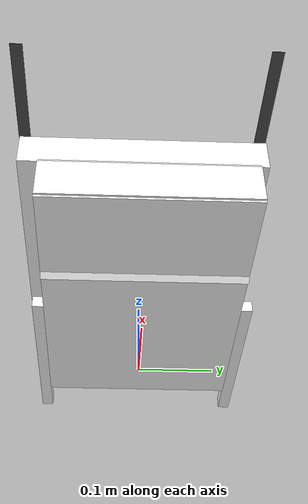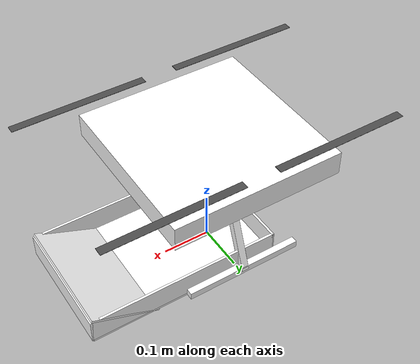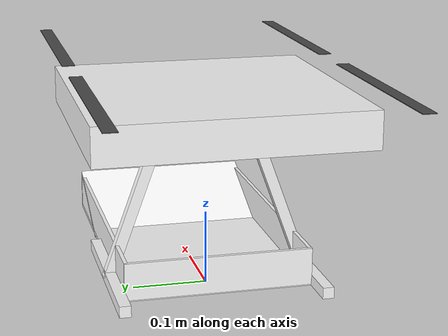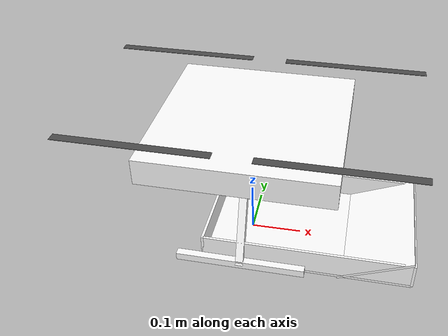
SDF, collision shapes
<?xml version="1.0" encoding="UTF-8"?>
<sdf version='1.9'>
  <model name='x500'>
    <include merge='true'>
      <uri>model://x500_base</uri>
    </include>
    <plugin filename="gz-sim-multicopter-motor-model-system" name="gz::sim::systems::MulticopterMotorModel">
      <jointName>rotor_0_joint</jointName>
      <linkName>rotor_0</linkName>
      <turningDirection>ccw</turningDirection>
      <timeConstantUp>0.0125</timeConstantUp>
      <timeConstantDown>0.025</timeConstantDown>
      <maxRotVelocity>1000.0</maxRotVelocity>
      <motorConstant>8.54858e-06</motorConstant>
      <momentConstant>0.016</momentConstant>
      <commandSubTopic>command/motor_speed</commandSubTopic>
      <motorNumber>0</motorNumber>
      <rotorDragCoefficient>8.06428e-05</rotorDragCoefficient>
      <rollingMomentCoefficient>1e-06</rollingMomentCoefficient>
      <rotorVelocitySlowdownSim>10</rotorVelocitySlowdownSim>
      <motorType>velocity</motorType>
    </plugin>
    <plugin filename="gz-sim-multicopter-motor-model-system" name="gz::sim::systems::MulticopterMotorModel">
      <jointName>rotor_1_joint</jointName>
      <linkName>rotor_1</linkName>
      <turningDirection>ccw</turningDirection>
      <timeConstantUp>0.0125</timeConstantUp>
      <timeConstantDown>0.025</timeConstantDown>
      <maxRotVelocity>1000.0</maxRotVelocity>
      <motorConstant>8.54858e-06</motorConstant>
      <momentConstant>0.016</momentConstant>
      <commandSubTopic>command/motor_speed</commandSubTopic>
      <motorNumber>1</motorNumber>
      <rotorDragCoefficient>8.06428e-05</rotorDragCoefficient>
      <rollingMomentCoefficient>1e-06</rollingMomentCoefficient>
      <rotorVelocitySlowdownSim>10</rotorVelocitySlowdownSim>
      <motorType>velocity</motorType>
    </plugin>
    <plugin filename="gz-sim-multicopter-motor-model-system" name="gz::sim::systems::MulticopterMotorModel">
      <jointName>rotor_2_joint</jointName>
      <linkName>rotor_2</linkName>
      <turningDirection>cw</turningDirection>
      <timeConstantUp>0.0125</timeConstantUp>
      <timeConstantDown>0.025</timeConstantDown>
      <maxRotVelocity>1000.0</maxRotVelocity>
      <motorConstant>8.54858e-06</motorConstant>
      <momentConstant>0.016</momentConstant>
      <commandSubTopic>command/motor_speed</commandSubTopic>
      <motorNumber>2</motorNumber>
      <rotorDragCoefficient>8.06428e-05</rotorDragCoefficient>
      <rollingMomentCoefficient>1e-06</rollingMomentCoefficient>
      <rotorVelocitySlowdownSim>10</rotorVelocitySlowdownSim>
      <motorType>velocity</motorType>
    </plugin>
    <plugin filename="gz-sim-multicopter-motor-model-system" name="gz::sim::systems::MulticopterMotorModel">
      <jointName>rotor_3_joint</jointName>
      <linkName>rotor_3</linkName>
      <turningDirection>cw</turningDirection>
      <timeConstantUp>0.0125</timeConstantUp>
      <timeConstantDown>0.025</timeConstantDown>
      <maxRotVelocity>1000.0</maxRotVelocity>
      <motorConstant>8.54858e-06</motorConstant>
      <momentConstant>0.016</momentConstant>
      <commandSubTopic>command/motor_speed</commandSubTopic>
      <motorNumber>3</motorNumber>
      <rotorDragCoefficient>8.06428e-05</rotorDragCoefficient>
      <rollingMomentCoefficient>1e-06</rollingMomentCoefficient>
      <rotorVelocitySlowdownSim>10</rotorVelocitySlowdownSim>
      <motorType>velocity</motorType>
    </plugin>
    <plugin filename="gz-sim-pose-publisher-system" name="gz::sim::systems::PosePublisher">
        <publish_nested_model_pose>true</publish_nested_model_pose>
        <publish_link_pose>false</publish_link_pose>
        <publish_collision_pose>true</publish_collision_pose>
        <publish_visual_pose>true</publish_visual_pose>
      </plugin>
  </model>
</sdf>

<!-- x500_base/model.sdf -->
<sdf version='1.9'>
  <model name='x500_base'>
    <pose>0 0 .24 0 0 0</pose>
    <self_collide>false</self_collide>
    <static>false</static>
    <link name="base_link">
      <inertial>
        <mass>2.0</mass>
        <inertia>
          <ixx>0.02166666666666667</ixx>
          <ixy>0</ixy>
          <ixz>0</ixz>
          <iyy>0.02166666666666667</iyy>
          <iyz>0</iyz>
          <izz>0.04000000000000001</izz>
        </inertia>
      </inertial>
      <gravity>true</gravity>
      <velocity_decay/>
      <visual name="base_link_visual">
        <pose>0 0 .025 0 0 3.141592654</pose>
        <geometry>
          <mesh>
            <scale>1 1 1</scale>
            <uri>model://x500_base/meshes/NXP-HGD-CF.dae</uri>
          </mesh>
        </geometry>
      </visual>
      <visual name="5010_motor_base_0">
        <pose>0.174 0.174 .032 0 0 -.45</pose>
        <geometry>
          <mesh>
            <scale>1 1 1</scale>
            <uri>model://x500_base/meshes/5010Base.dae</uri>
          </mesh>
        </geometry>
      </visual>
      <visual name="5010_motor_base_1">
        <pose>-0.174 0.174 .032 0 0 -.45</pose>
        <geometry>
          <mesh>
            <scale>1 1 1</scale>
            <uri>model://x500_base/meshes/5010Base.dae</uri>
          </mesh>
        </geometry>
      </visual>
      <visual name="5010_motor_base_2">
        <pose>0.174 -0.174 .032 0 0 -.45</pose>
        <geometry>
          <mesh>
            <scale>1 1 1</scale>
            <uri>model://x500_base/meshes/5010Base.dae</uri>
          </mesh>
        </geometry>
      </visual>
      <visual name="5010_motor_base_3">
        <pose>-0.174 -0.174 .032 0 0 -.45</pose>
        <geometry>
          <mesh>
            <scale>1 1 1</scale>
            <uri>model://x500_base/meshes/5010Base.dae</uri>
          </mesh>
        </geometry>
      </visual>
      <visual name="NXP_FMUK66_FRONT">
        <pose>0.047 .001 .043 1 0 1.57</pose>
        <cast_shadows>false</cast_shadows>
        <geometry>
          <plane>
            <normal>0 0 1</normal>
            <size>.013 .007</size>
          </plane>
        </geometry>
        <material>
          <diffuse>1.0 1.0 1.0</diffuse>
          <specular>1.0 1.0 1.0</specular>
          <pbr>
            <metal>
              <albedo_map>model://x500_base/materials/textures/nxp.png</albedo_map>
            </metal>
          </pbr>
        </material>
      </visual>
      <visual name="NXP_FMUK66_TOP">
        <pose>-0.023 0 .0515 0 0 -1.57</pose>
        <cast_shadows>false</cast_shadows>
        <geometry>
          <plane>
            <normal>0 0 1</normal>
            <size>.013 .007</size>
          </plane>
        </geometry>
        <material>
          <diffuse>1.0 1.0 1.0</diffuse>
          <specular>1.0 1.0 1.0</specular>
          <pbr>
            <metal>
              <albedo_map>model://x500_base/materials/textures/nxp.png</albedo_map>
            </metal>
          </pbr>
        </material>
      </visual>
      <visual name="RDDRONE_FMUK66_TOP">
        <pose>-.03 0 .0515 0 0 -1.57</pose>
        <cast_shadows>false</cast_shadows>
        <geometry>
          <plane>
            <normal>0 0 1</normal>
            <size>.032 .0034</size>
          </plane>
        </geometry>
        <material>
          <diffuse>1.0 1.0 1.0</diffuse>
          <specular>1.0 1.0 1.0</specular>
          <pbr>
            <metal>
              <albedo_map>model://x500_base/materials/textures/rd.png</albedo_map>
            </metal>
          </pbr>
        </material>
      </visual>
      <collision name="base_link_collision_0">
        <pose>0 0 .007 0 0 0</pose>
        <geometry>
          <box>
            <size>0.35355339059327373 0.35355339059327373 0.05</size>
          </box>
        </geometry>
        <surface>
          <contact>
            <ode>
              <min_depth>0.001</min_depth>
              <max_vel>0</max_vel>
            </ode>
          </contact>
          <friction>
            <ode/>
          </friction>
        </surface>
      </collision>
      <collision name="base_link_collision_1">
        <pose>0 -0.098 -.123 -0.35 0 0</pose>
        <geometry>
          <box>
            <size>0.015 0.015 0.21</size>
          </box>
        </geometry>
        <surface>
          <contact>
            <ode>
              <min_depth>0.001</min_depth>
              <max_vel>0</max_vel>
            </ode>
          </contact>
          <friction>
            <ode/>
          </friction>
        </surface>
      </collision>
      <collision name="base_link_collision_2">
        <pose>0 0.098 -.123 0.35 0 0</pose>
        <geometry>
          <box>
            <size>0.015 0.015 0.21</size>
          </box>
        </geometry>
        <surface>
          <contact>
            <ode>
              <min_depth>0.001</min_depth>
              <max_vel>0</max_vel>
            </ode>
          </contact>
          <friction>
            <ode/>
          </friction>
        </surface>
      </collision>
      <collision name="base_link_collision_3">
        <pose>0 -0.132 -.2195 0 0 0</pose>
        <geometry>
          <box>
            <size>0.25 0.015 0.015</size>
          </box>
        </geometry>
        <surface>
          <contact>
            <ode>
              <min_depth>0.001</min_depth>
              <max_vel>0</max_vel>
            </ode>
          </contact>
          <friction>
            <ode/>
          </friction>
        </surface>
      </collision>
      <collision name="base_link_collision_4">
        <pose>0 0.132 -.2195 0 0 0</pose>
        <geometry>
          <box>
            <size>0.25 0.015 0.015</size>
          </box>
        </geometry>
        <surface>
          <contact>
            <ode>
              <min_depth>0.001</min_depth>
              <max_vel>0</max_vel>
            </ode>
          </contact>
          <friction>
            <ode/>
          </friction>
        </surface>
      </collision>
      <sensor name="air_pressure_sensor" type="air_pressure">
        <always_on>1</always_on>
        <update_rate>50</update_rate>
        <air_pressure>
          <!-- Noise modeled after BMP390 -->
          <pressure>
            <noise type="gaussian">
              <mean>0</mean>
              <stddev>3</stddev>
            </noise>
          </pressure>
        </air_pressure>
      </sensor>
      <sensor name="magnetometer_sensor" type="magnetometer">
        <always_on>1</always_on>
        <update_rate>100</update_rate>
        <magnetometer>
          <!-- TODO: update to fix units and coordinate system when we move past Harmonic -->
          <!-- See https://github.com/gazebosim/gz-sim/pull/2460 -->
          <!-- 3mgauss RMS: NOTE: noise is in tesla but sensor reports data in gauss -->
          <!-- Noise modeled after IIS2MDC -->
          <x>
            <noise type="gaussian">
              <stddev>0.0001</stddev>
            </noise>
          </x>
          <y>
            <noise type="gaussian">
              <stddev>0.0001</stddev>
            </noise>
          </y>
          <z>
            <noise type="gaussian">
              <stddev>0.0001</stddev>
            </noise>
          </z>
        </magnetometer>
      </sensor>
      <sensor name="imu_sensor" type="imu">
        <always_on>1</always_on>
        <update_rate>250</update_rate>
        <imu>
          <angular_velocity>
            <!-- Noise modeled after IIM42653 -->
            <!-- 0.05 deg/s converted to rad/s -->
            <x>
              <noise type="gaussian">
                <mean>0.0</mean>
                <stddev>0.0008726646</stddev>
              </noise>
            </x>
            <y>
              <noise type="gaussian">
                <mean>0.0</mean>
                <stddev>0.0008726646</stddev>
              </noise>
            </y>
            <z>
              <noise type="gaussian">
                <mean>0.0</mean>
                <stddev>0.0008726646</stddev>
              </noise>
            </z>
          </angular_velocity>
          <linear_acceleration>
            <!-- Noise modeled after IIM42653 -->
            <!-- X & Y axis: 0.65 mg-rms converted to m/ss -->
            <x>
              <noise type="gaussian">
                <mean>0.0</mean>
                <stddev>0.00637</stddev>
              </noise>
            </x>
            <y>
              <noise type="gaussian">
                <mean>0.0</mean>
                <stddev>0.00637</stddev>
              </noise>
            </y>
            <!-- Z axis: 0.70 mg-rms converted to m/ss-->
            <z>
              <noise type="gaussian">
                <mean>0.0</mean>
                <stddev>0.00686</stddev>
              </noise>
            </z>
          </linear_acceleration>
        </imu>
      </sensor>
      <sensor name="navsat_sensor" type="navsat">
        <always_on>1</always_on>
        <update_rate>30</update_rate>
      </sensor>
    </link>
    <link name="rotor_0">
      <gravity>true</gravity>
      <self_collide>false</self_collide>
      <velocity_decay/>
      <pose>0.174 -0.174 0.06 0 0 0</pose>
      <inertial>
          <mass>0.016076923076923075</mass>
          <inertia>
            <ixx>3.8464910483993325e-07</ixx>
            <iyy>2.6115851691700804e-05</iyy>
            <izz>2.649858234714004e-05</izz>
          </inertia>
        </inertial>
      <visual name="rotor_0_visual">
        <pose>-0.022 -0.14638461538461536 -0.016 0 0 0</pose>
        <geometry>
          <mesh>
            <scale>0.8461538461538461 0.8461538461538461 0.8461538461538461</scale>
            <uri>model://x500_base/meshes/1345_prop_ccw.stl</uri>
          </mesh>
        </geometry>
        <material>
          <script>
            <name>Gazebo/DarkGrey</name>
            <uri>file://media/materials/scripts/gazebo.material</uri>
          </script>
        </material>
      </visual>
      <visual name="rotor_0_visual_motor_bell">
        <pose>0 0 -.032 0 0 0</pose>
        <geometry>
          <mesh>
            <scale>1 1 1</scale>
            <uri>model://x500_base/meshes/5010Bell.dae</uri>
          </mesh>
        </geometry>
      </visual>
      <collision name="rotor_0_collision">
        <pose>0 0 0 0 0 0 </pose>
        <geometry>
          <box>
            <size>0.2792307692307692 0.016923076923076923 0.0008461538461538462</size>
          </box>
        </geometry>
        <surface>
          <contact>
            <ode>
              <min_depth>0.001</min_depth>
              <max_vel>0</max_vel>
            </ode>
          </contact>
          <friction>
            <ode/>
          </friction>
        </surface>
      </collision>
    </link>
    <joint name="rotor_0_joint" type="revolute">
      <parent>base_link</parent>
      <child>rotor_0</child>
      <axis>
        <xyz>0 0 1</xyz>
        <limit>
          <lower>-1e+16</lower>
          <upper>1e+16</upper>
        </limit>
        <dynamics>
          <spring_reference>0</spring_reference>
          <spring_stiffness>0</spring_stiffness>
        </dynamics>
      </axis>
    </joint>
    <link name="rotor_1">
      <gravity>true</gravity>
      <self_collide>false</self_collide>
      <velocity_decay/>
      <pose>-0.174 0.174 0.06 0 0 0</pose>
      <inertial>
          <mass>0.016076923076923075</mass>
          <inertia>
            <ixx>3.8464910483993325e-07</ixx>
            <iyy>2.6115851691700804e-05</iyy>
            <izz>2.649858234714004e-05</izz>
          </inertia>
        </inertial>
      <visual name="rotor_1_visual">
        <pose>-0.022 -0.14638461538461536 -0.016 0 0 0</pose>
        <geometry>
          <mesh>
            <scale>0.8461538461538461 0.8461538461538461 0.8461538461538461</scale>
            <uri>model://x500_base/meshes/1345_prop_ccw.stl</uri>
          </mesh>
        </geometry>
        <material>
          <script>
            <name>Gazebo/DarkGrey</name>
            <uri>file://media/materials/scripts/gazebo.material</uri>
          </script>
        </material>
      </visual>
      <visual name="rotor_1_visual_motor_top">
        <pose>0 0 -.032 0 0 0</pose>
        <geometry>
          <mesh>
            <scale>1 1 1</scale>
            <uri>model://x500_base/meshes/5010Bell.dae</uri>
          </mesh>
        </geometry>
      </visual>
      <collision name="rotor_1_collision">
        <pose>0 0 0 0 0 0 </pose>
        <geometry>
          <box>
            <size>0.2792307692307692 0.016923076923076923 0.0008461538461538462</size>
          </box>
        </geometry>
        <surface>
          <contact>
            <ode>
              <min_depth>0.001</min_depth>
              <max_vel>0</max_vel>
            </ode>
          </contact>
          <friction>
            <ode/>
          </friction>
        </surface>
      </collision>
    </link>
    <joint name="rotor_1_joint" type="revolute">
      <parent>base_link</parent>
      <child>rotor_1</child>
      <axis>
        <xyz>0 0 1</xyz>
        <limit>
          <lower>-1e+16</lower>
          <upper>1e+16</upper>
        </limit>
        <dynamics>
          <spring_reference>0</spring_reference>
          <spring_stiffness>0</spring_stiffness>
        </dynamics>
      </axis>
    </joint>
    <link name="rotor_2">
      <gravity>true</gravity>
      <self_collide>false</self_collide>
      <velocity_decay/>
      <pose>0.174 0.174 0.06 0 0 0</pose>
      <inertial>
          <mass>0.016076923076923075</mass>
          <inertia>
            <ixx>3.8464910483993325e-07</ixx>
            <iyy>2.6115851691700804e-05</iyy>
            <izz>2.649858234714004e-05</izz>
          </inertia>
        </inertial>
      <visual name="rotor_2_visual">
        <pose>-0.022 -0.14638461538461536 -0.016 0 0 0</pose>
        <geometry>
          <mesh>
            <scale>0.8461538461538461 0.8461538461538461 0.8461538461538461</scale>
            <uri>model://x500_base/meshes/1345_prop_cw.stl</uri>
          </mesh>
        </geometry>
        <material>
          <script>
            <name>Gazebo/DarkGrey</name>
            <uri>file://media/materials/scripts/gazebo.material</uri>
          </script>
        </material>
      </visual>
      <visual name="rotor_2_visual_motor_top">
        <pose>0 0 -.032 0 0 0</pose>
        <geometry>
          <mesh>
            <scale>1 1 1</scale>
            <uri>model://x500_base/meshes/5010Bell.dae</uri>
          </mesh>
        </geometry>
      </visual>
      <collision name="rotor_2_collision">
        <pose>0 0 0 0 0 0 </pose>
        <geometry>
          <box>
            <size>0.2792307692307692 0.016923076923076923 0.0008461538461538462</size>
          </box>
        </geometry>
        <surface>
          <contact>
            <ode>
              <min_depth>0.001</min_depth>
              <max_vel>0</max_vel>
            </ode>
          </contact>
          <friction>
            <ode/>
          </friction>
        </surface>
      </collision>
    </link>
    <joint name="rotor_2_joint" type="revolute">
      <parent>base_link</parent>
      <child>rotor_2</child>
      <axis>
        <xyz>0 0 1</xyz>
        <limit>
          <lower>-1e+16</lower>
          <upper>1e+16</upper>
        </limit>
        <dynamics>
          <spring_reference>0</spring_reference>
          <spring_stiffness>0</spring_stiffness>
        </dynamics>
      </axis>
    </joint>
<link name="rotor_3">
      <gravity>true</gravity>
      <self_collide>false</self_collide>
      <velocity_decay/>
      <pose>-0.174 -0.174 0.06 0 0 0</pose>
      <inertial>
          <mass>0.016076923076923075</mass>
          <inertia>
            <ixx>3.8464910483993325e-07</ixx>
            <iyy>2.6115851691700804e-05</iyy>
            <izz>2.649858234714004e-05</izz>
          </inertia>
        </inertial>
      <visual name="rotor_3_visual">
        <pose>-0.022 -0.14638461538461536 -0.016 0 0 0</pose>
        <geometry>
          <mesh>
            <scale>0.8461538461538461 0.8461538461538461 0.8461538461538461</scale>
            <uri>model://x500_base/meshes/1345_prop_cw.stl</uri>
          </mesh>
        </geometry>
        <material>
          <script>
            <name>Gazebo/DarkGrey</name>
            <uri>file://media/materials/scripts/gazebo.material</uri>
          </script>
        </material>
      </visual>
      <visual name="rotor_3_visual_motor_top">
        <pose>0 0 -.032 0 0 0</pose>
        <geometry>
          <mesh>
            <scale>1 1 1</scale>
            <uri>model://x500_base/meshes/5010Bell.dae</uri>
          </mesh>
        </geometry>
      </visual>
      <collision name="rotor_3_collision">
        <pose>0 0 0 0 0 0 </pose>
        <geometry>
          <box>
            <size>0.2792307692307692 0.016923076923076923 0.0008461538461538462</size>
          </box>
        </geometry>
        <surface>
          <contact>
            <ode>
              <min_depth>0.001</min_depth>
              <max_vel>0</max_vel>
            </ode>
          </contact>
          <friction>
            <ode/>
          </friction>
        </surface>
      </collision>
    </link>

    <joint name="rotor_3_joint" type="revolute">
      <parent>base_link</parent>
      <child>rotor_3</child>
      <axis>
        <xyz>0 0 1</xyz>
        <limit>
          <lower>-1e+16</lower>
          <upper>1e+16</upper>
        </limit>
        <dynamics>
          <spring_reference>0</spring_reference>
          <spring_stiffness>0</spring_stiffness>
        </dynamics>
      </axis>
    </joint>

   <link name="landing_gear_plate">
      <pose>0.125 0 -0.225 0 0 0</pose>
      <inertial>
        <mass>0.2</mass> <inertia>
          <ixx>0.0002</ixx> <ixy>0</ixy> <ixz>0</ixz>
          <iyy>0.0002</iyy> <iyz>0</iyz>
          <izz>0.0002</izz>
        </inertia>
      </inertial>

      <visual name="bottom_visual">
        <geometry>
          <box><size>0.4 0.25 0.005</size></box>
        </geometry>
        <material><diffuse>1 1 1 1</diffuse></material>
      </visual>
      <collision name="bottom_collision">
 	 <geometry>
  	  <box><size>0.4 0.25 0.005</size></box>
  	</geometry>
 	 <surface>
  	  <friction>
    	  <ode>
    	    <mu>1.0</mu>  <mu2>1.0</mu2> <fdir1>0 0 0</fdir1> </ode>
    	</friction>
   	 <contact>
  	    <ode>
   	     <min_depth>0.001</min_depth> </ode>
  	 </contact>
 	 </surface>
	</collision>

      <visual name="scivolo_visual">
      <pose>0.13 0 0.025 0 -0.4 0</pose>
        <geometry>
          <box><size>0.15 0.25 0.005</size></box>
        </geometry>
        <material><diffuse>1 1 1 1</diffuse></material>
      </visual>
      <collision name="scivolo_collision">
  	<pose>0.13 0 0.025 0 -0.4 0</pose>
 	 <geometry>
  	  <box><size>0.15 0.25 0.005</size></box>
  	</geometry>
 	 <surface>
  	  <friction>
    	  <ode>
    	    <mu>1.0</mu>  <mu2>1.0</mu2> <fdir1>0 0 0</fdir1> </ode>
    	</friction>
   	 <contact>
  	    <ode>
   	     <min_depth>0.001</min_depth> </ode>
  	 </contact>
 	 </surface>
	</collision>

      <visual name="wall_left_visual">
        <pose>0 0.125 0.025 0 0 0</pose>
        <geometry>
          <box><size>0.4 0.005 0.05</size></box>
        </geometry>
        <material><diffuse>0.8 0.8 0.8 1</diffuse></material>
      </visual>
      <collision name="wall_left_collision">
        <pose>0 0.1225 0.025 0 0 0</pose>
        <geometry>
          <box><size>0.4 0.005 0.05</size></box>
        </geometry>
      </collision>

      <visual name="wall_right_visual">
        <pose>0 -0.1225 0.025 0 0 0</pose>
        <geometry>
          <box><size>0.4 0.005 0.05</size></box>
        </geometry>
        <material><diffuse>0.8 0.8 0.8 1</diffuse></material>
      </visual>
      <collision name="wall_right_collision">
        <pose>0 -0.1225 0.025 0 0 0</pose>
        <geometry>
          <box><size>0.4 0.005 0.05</size></box>
        </geometry>
      </collision>

      <visual name="wall_front_visual">
        <pose>0.2 0 0.025 0 0 0</pose>
        <geometry>
          <box><size>0.005 0.25 0.05</size></box>
        </geometry>
        <material><diffuse>0.8 0.8 0.8 1</diffuse></material>
      </visual>
      <collision name="wall_front_collision">
        <pose>0.2 0 0.025 0 0 0</pose>
        <geometry>
          <box><size>0.005 0.25 0.05</size></box>
        </geometry>
      </collision>

      <visual name="wall_back_visual">
        <pose>-0.2 0 0.025 0 0 0</pose>
        <geometry>
          <box><size>0.005 0.25 0.05</size></box>
        </geometry>
        <material><diffuse>0.8 0.8 0.8 1</diffuse></material>
      </visual>
      <collision name="wall_back_collision">
        <pose>-0.2 0 0.025 0 0 0</pose>
        <geometry>
          <box><size>0.005 0.25 0.05</size></box>
        </geometry>
      </collision>
    </link>

    <joint name="plate_joint" type="fixed">
      <parent>base_link</parent>
      <child>landing_gear_plate</child>
    </joint>

    </model>
</sdf>
